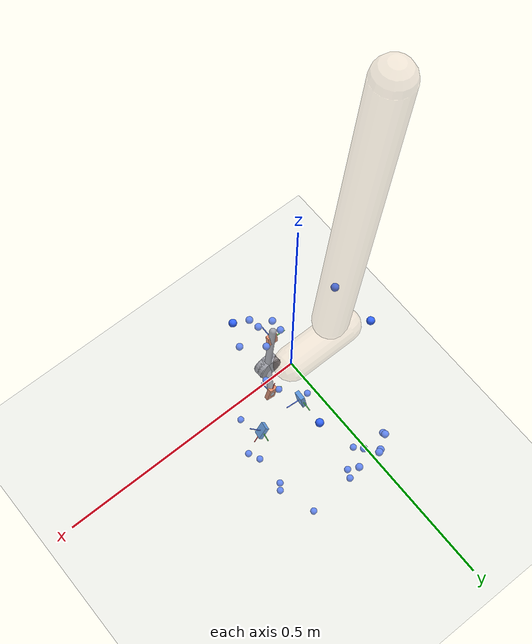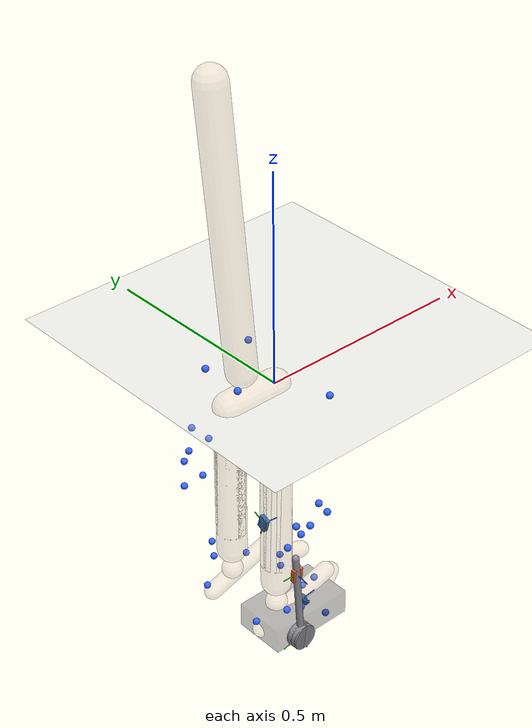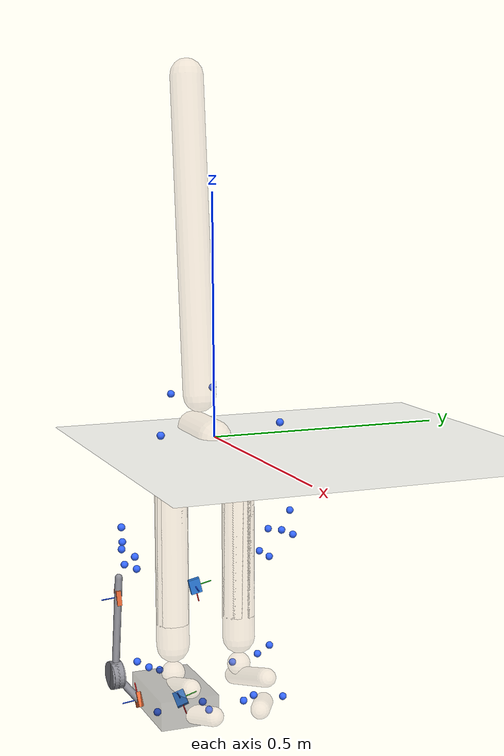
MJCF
<mujoco model="AB18">
  <compiler angle="radian" autolimits="true"/>
  <option timestep="0.005" gravity="0 0 -9.81"><flag contact="disable"/></option>
  <visual><global offwidth="1600" offheight="1200"/>
    <headlight ambient="0.55 0.55 0.55" diffuse="0.6 0.6 0.6"/></visual>
  <default><joint limited="false" damping="0"/><geom contype="0" conaffinity="0"/></default>
  <asset>
    <texture name="grid" type="2d" builtin="checker" rgb1="0.75 0.77 0.8" rgb2="0.85 0.87 0.9" width="512" height="512"/>
    <material name="grid" texture="grid" texrepeat="2 2" texuniform="true"/>
    <material name="skin" rgba="0.85 0.72 0.62 0.28"/>
  </asset>
  <worldbody>
    <light pos="0 0 4" dir="0 0 -1"/>
    <geom name="floor" type="plane" size="0 0 0.05" material="grid"/>
    <body name="pelvis" pos="0 0 0" quat="1 0 0 0">
      <joint name="pelvis_tx" type="slide" axis="1 0 0"/>
      <joint name="pelvis_ty" type="slide" axis="0 0 1"/>
      <joint name="pelvis_tz" type="slide" axis="0 -1 0"/>
      <joint name="pelvis_tilt" type="hinge" axis="0 -1 0"/>
      <joint name="pelvis_list" type="hinge" axis="1 0 0"/>
      <joint name="pelvis_rotation" type="hinge" axis="0 0 1"/>
      <inertial pos="-0.063242296 0 0" mass="9.39691" diaginertia="0.093969058 0.093969058 0.093969058"/>
      <geom type="capsule" fromto="0 0 0 -0.12648459 0 0" size="0.035" material="skin" mass="0"/>
      <site name="m_R_ASIS" pos="0.038340863 -0.12784244 0.018574755" size="0.008" rgba="0.2 0.4 1 1" group="2"/>
      <site name="m_L_ASIS" pos="0.040589419 0.12925634 0.028045488" size="0.008" rgba="0.2 0.4 1 1" group="2"/>
      <site name="m_L_PSIS" pos="-0.14479974 0.048839696 0.079273576" size="0.008" rgba="0.2 0.4 1 1" group="2"/>
      <site name="m_R_PSIS" pos="-0.14063287 -0.046551042 0.071405024" size="0.008" rgba="0.2 0.4 1 1" group="2"/>
      <body name="femur_r" pos="-0.063242296 -0.074692103 -0.059127521" quat="1 0 0 0">
        <joint name="hip_flexion_r" type="hinge" axis="0 -1 0"/>
        <joint name="hip_adduction_r" type="hinge" axis="1 0 0"/>
        <joint name="hip_rotation_r" type="hinge" axis="0 0 1"/>
        <inertial pos="0 0 -0.1742859" mass="7.42162" diaginertia="0.074216167 0.074216167 0.074216167"/>
        <geom type="capsule" fromto="0 0 0 0 0 -0.3485718" size="0.035" material="skin" mass="0"/>
        <site name="m_R_Thigh_Upper" pos="0.017455872 -0.11357388 -0.12490734" size="0.008" rgba="0.2 0.4 1 1" group="2"/>
        <site name="m_R_Thigh_Front" pos="0.057300129 -0.097913778 -0.1789683" size="0.008" rgba="0.2 0.4 1 1" group="2"/>
        <site name="m_R_Thigh_Rear" pos="-0.0016213972 -0.10853877 -0.1768782" size="0.008" rgba="0.2 0.4 1 1" group="2"/>
        <site name="m_R_Knee_Lat" pos="0.00076262967 -0.079702434 -0.4232839" size="0.008" rgba="0.2 0.4 1 1" group="2"/>
        <body name="tibia_r" pos="0 0 0" quat="1 0 0 0">
<geom name="gt_shank_axis_x" type="capsule" size="0.0012" fromto="0.00720 0.04850 -0.27090 0.00595 0.05706 -0.30481" rgba="1 0.1 0.1 1" contype="0" conaffinity="0" mass="0"/>
<geom name="gt_shank_axis_y" type="capsule" size="0.0012" fromto="0.00720 0.04850 -0.27090 0.01102 0.08227 -0.26252" rgba="0.1 0.8 0.1 1" contype="0" conaffinity="0" mass="0"/>
<geom name="gt_shank_axis_z" type="capsule" size="0.0012" fromto="0.00720 0.04850 -0.27090 0.04197 0.04510 -0.27304" rgba="0.1 0.3 1 1" contype="0" conaffinity="0" mass="0"/>
<geom name="exo_shank_axis_x" type="capsule" size="0.0012" fromto="-0.03828 -0.10766 -0.29010 -0.03871 -0.11082 -0.25524" rgba="1 0.1 0.1 1" contype="0" conaffinity="0" mass="0"/>
<geom name="exo_shank_axis_y" type="capsule" size="0.0012" fromto="-0.03828 -0.10766 -0.29010 -0.07322 -0.10561 -0.29034" rgba="0.1 0.8 0.1 1" contype="0" conaffinity="0" mass="0"/>
<geom name="exo_shank_axis_z" type="capsule" size="0.0012" fromto="-0.03828 -0.10766 -0.29010 -0.04029 -0.14245 -0.29328" rgba="0.1 0.3 1 1" contype="0" conaffinity="0" mass="0"/>
<geom name="encoder_shank" type="cylinder" size="0.03 0.012" fromto="-0.03459 -0.12969 -0.45847 -0.03381 -0.10571 -0.45833" rgba="0.55 0.55 0.58 1" contype="0" conaffinity="0" mass="0"/>
<geom name="strut_shank" type="capsule" size="0.008" fromto="-0.03420 -0.11770 -0.45840 -0.03930 -0.10515 -0.24802" rgba="0.55 0.55 0.58 1" contype="0" conaffinity="0" mass="0"/>
          <joint name="knee_r_translation1" type="slide" axis="1 0 0"/>
          <joint name="knee_r_translation2" type="slide" axis="0 0 1"/>
          <joint name="knee_angle_r" type="hinge" axis="0 -1 0"/>
          <inertial pos="0 0 -0.19904865" mass="2.95823" diaginertia="0.029582261 0.029582261 0.029582261"/>
          <geom type="capsule" fromto="0 0 0 0 0 -0.39809729" size="0.035" material="skin" mass="0"/>
          <site name="m_R_Shank_Upper" pos="-0.031610506 -0.098000651 -0.16951193" size="0.008" rgba="0.2 0.4 1 1" group="2"/>
          <site name="m_R_Shank_Front" pos="0.0011793471 -0.077597487 -0.22155953" size="0.008" rgba="0.2 0.4 1 1" group="2"/>
          <site name="m_R_Shank_Rear" pos="-0.047639596 -0.089500063 -0.22367706" size="0.008" rgba="0.2 0.4 1 1" group="2"/>
          <site name="m_R_Ankle_Lat" pos="-0.013631711 -0.049686261 -0.4446729" size="0.008" rgba="0.2 0.4 1 1" group="2"/>
          <site name="gt_shank_imu" type="box" size="0.016 0.012 0.005" pos="0.0072 0.0485 -0.2709" quat="0.68340492 0.12313501 0.71787373 0.04952567" rgba="0.16 0.47 0.84 1" group="1"/>
          <site name="exo_shank_imu" type="box" size="0.016 0.012 0.005" pos="-0.038281 -0.107656 -0.290096" quat="-0.4886153 -0.50504715 0.53894347 -0.46445925" rgba="0.92 0.41 0.20 1" group="1"/>
          <body name="talus_r" pos="0 0 -0.45844091" quat="1 0 0 0">
            <joint name="ankle_angle_r" type="hinge" axis="-0.10501355 -0.97912632 -0.17402245"/>
            <inertial pos="0 0 0" mass="0.0797903" diaginertia="0.00079790319 0.00079790319 0.00079790319"/>
            <geom type="sphere" size="0.025" material="skin" mass="0"/>
            <body name="calcn_r" pos="-0.051995728 -0.0084438418 -0.044724642" quat="1 0 0 0">
<geom name="gt_foot_axis_x" type="capsule" size="0.0012" fromto="0.12250 0.00060 0.01230 0.14777 0.00459 -0.01159" rgba="1 0.1 0.1 1" contype="0" conaffinity="0" mass="0"/>
<geom name="gt_foot_axis_y" type="capsule" size="0.0012" fromto="0.12250 0.00060 0.01230 0.12980 0.03226 0.02531" rgba="0.1 0.8 0.1 1" contype="0" conaffinity="0" mass="0"/>
<geom name="gt_foot_axis_z" type="capsule" size="0.0012" fromto="0.12250 0.00060 0.01230 0.14559 -0.01378 0.03432" rgba="0.1 0.3 1 1" contype="0" conaffinity="0" mass="0"/>
<geom name="exo_foot_axis_x" type="capsule" size="0.0012" fromto="0.04119 -0.06627 -0.00877 0.02780 -0.06964 0.02339" rgba="1 0.1 0.1 1" contype="0" conaffinity="0" mass="0"/>
<geom name="exo_foot_axis_y" type="capsule" size="0.0012" fromto="0.04119 -0.06627 -0.00877 0.00889 -0.06671 -0.02226" rgba="0.1 0.8 0.1 1" contype="0" conaffinity="0" mass="0"/>
<geom name="exo_foot_axis_z" type="capsule" size="0.0012" fromto="0.04119 -0.06627 -0.00877 0.04289 -0.10110 -0.01171" rgba="0.1 0.3 1 1" contype="0" conaffinity="0" mass="0"/>
<geom name="encoder_foot" type="cylinder" size="0.03 0.012" fromto="0.01899 -0.12124 0.04440 0.01661 -0.09736 0.04500" rgba="0.55 0.55 0.58 1" contype="0" conaffinity="0" mass="0"/>
<geom name="strut_foot" type="capsule" size="0.008" fromto="0.01780 -0.10930 0.04470 0.04119 -0.06627 -0.00877" rgba="0.55 0.55 0.58 1" contype="0" conaffinity="0" mass="0"/>
<geom name="shoe" type="box" pos="0.09297 -0.00222 0.00620" size="0.10109 0.06194 0.03000" rgba="0.15 0.15 0.18 0.35" contype="0" conaffinity="0" mass="0"/>
              <joint name="subtalar_angle_r" type="hinge" axis="0.78717961 0.12094949 0.60474746"/>
              <inertial pos="0.096256205 0 0.028876862" mass="0.997379" diaginertia="0.0099737898 0.0099737898 0.0099737898"/>
              <geom type="capsule" fromto="0 0 0 0.19251241 0 0.057753723" size="0.02" material="skin" mass="0"/>
              <site name="m_R_Heel" pos="-0.015121386 -0.00032850646 0.029411324" size="0.008" rgba="0.2 0.4 1 1" group="2"/>
              <site name="m_R_Toe_Lat" pos="0.14127217 -0.056049758 -0.0023273129" size="0.008" rgba="0.2 0.4 1 1" group="2"/>
              <site name="m_R_Toe_Med" pos="0.16668126 0.047835188 -0.0037984096" size="0.008" rgba="0.2 0.4 1 1" group="2"/>
              <site name="m_R_Toe_Tip" pos="0.18405935 0.02796664 0.022792341" size="0.008" rgba="0.2 0.4 1 1" group="2"/>
              <site name="gt_foot_imu" type="box" size="0.016 0.012 0.005" pos="0.1225 0.0006 0.0123" quat="0.90216307 0.21689328 0.3719813 -0.026249038" rgba="0.16 0.47 0.84 1" group="1"/>
              <site name="exo_foot_imu" type="box" size="0.016 0.012 0.005" pos="0.041186 -0.06627 -0.008771" quat="-0.36086193 -0.42249648 0.60284566 -0.57258406" rgba="0.92 0.41 0.20 1" group="1"/>
              <body name="toes_r" pos="0.1721061 -0.001039567 -0.0019251241" quat="1 0 0 0">
                <joint name="mtp_angle_r" type="hinge" axis="-0.5809544 -0.81393611 0"/>
                <inertial pos="0.033304647 0.016844836 0.0057753723" mass="0.172826" diaginertia="0.0017282583 0.0017282583 0.0017282583"/>
                <geom type="capsule" fromto="0 0 0 0.066609294 0.033689672 0.011550745" size="0.02" material="skin" mass="0"/>
              </body>
            </body>
          </body>
        </body>
      </body>
      <body name="femur_l" pos="-0.063242296 0.074692103 -0.059127521" quat="1 0 0 0">
        <joint name="hip_flexion_l" type="hinge" axis="0 -1 0"/>
        <joint name="hip_adduction_l" type="hinge" axis="-1 0 0"/>
        <joint name="hip_rotation_l" type="hinge" axis="0 0 -1"/>
        <inertial pos="0 0 -0.1742859" mass="7.42162" diaginertia="0.074216167 0.074216167 0.074216167"/>
        <geom type="capsule" fromto="0 0 0 0 0 -0.3485718" size="0.035" material="skin" mass="0"/>
        <site name="m_L_Thigh_Upper" pos="-0.0053726371 0.1229241 -0.13003535" size="0.008" rgba="0.2 0.4 1 1" group="2"/>
        <site name="m_L_Thigh_Front" pos="0.034218828 0.11320389 -0.17366738" size="0.008" rgba="0.2 0.4 1 1" group="2"/>
        <site name="m_L_Thigh_Rear" pos="-0.024698934 0.1114287 -0.17773882" size="0.008" rgba="0.2 0.4 1 1" group="2"/>
        <site name="m_L_Knee_Lat" pos="0.00097664924 0.071736656 -0.42670212" size="0.008" rgba="0.2 0.4 1 1" group="2"/>
        <body name="tibia_l" pos="0 0 0" quat="1 0 0 0">
          <joint name="knee_l_translation1" type="slide" axis="1 0 0"/>
          <joint name="knee_l_translation2" type="slide" axis="0 0 1"/>
          <joint name="knee_angle_l" type="hinge" axis="0 -1 0"/>
          <inertial pos="0 0 -0.19904865" mass="2.95823" diaginertia="0.029582261 0.029582261 0.029582261"/>
          <geom type="capsule" fromto="0 0 0 0 0 -0.39809729" size="0.035" material="skin" mass="0"/>
          <site name="m_L_Shank_Upper" pos="-0.054344021 0.091687975 -0.17998403" size="0.008" rgba="0.2 0.4 1 1" group="2"/>
          <site name="m_L_Shank_Front" pos="-0.014540529 0.077810993 -0.23112919" size="0.008" rgba="0.2 0.4 1 1" group="2"/>
          <site name="m_L_Shank_Rear" pos="-0.068640459 0.076451211 -0.23209915" size="0.008" rgba="0.2 0.4 1 1" group="2"/>
          <site name="m_L_Ankle_Lat" pos="-0.01314004 0.048997057 -0.44759167" size="0.008" rgba="0.2 0.4 1 1" group="2"/>
          <body name="talus_l" pos="0 0 -0.45844091" quat="1 0 0 0">
            <joint name="ankle_angle_l" type="hinge" axis="0.10501355 -0.97912632 0.17402245"/>
            <inertial pos="0 0 0" mass="0.0797903" diaginertia="0.00079790319 0.00079790319 0.00079790319"/>
            <geom type="sphere" size="0.025" material="skin" mass="0"/>
            <body name="calcn_l" pos="-0.051995728 0.0084438418 -0.044724642" quat="1 0 0 0">
              <joint name="subtalar_angle_l" type="hinge" axis="-0.78717961 0.12094949 -0.60474746"/>
              <inertial pos="0.096256205 0 0.028876862" mass="0.997379" diaginertia="0.0099737898 0.0099737898 0.0099737898"/>
              <geom type="capsule" fromto="0 0 0 0.19251241 0 0.057753723" size="0.02" material="skin" mass="0"/>
              <site name="m_L_Heel" pos="-0.013920675 0.0017904602 0.024537086" size="0.008" rgba="0.2 0.4 1 1" group="2"/>
              <site name="m_L_Toe_Lat" pos="0.14793309 0.055495436 -0.0063519271" size="0.008" rgba="0.2 0.4 1 1" group="2"/>
              <site name="m_L_Toe_Med" pos="0.16827988 -0.042106411 0.0053571266" size="0.008" rgba="0.2 0.4 1 1" group="2"/>
              <site name="m_L_Toe_Tip" pos="0.18182316 -0.024744069 0.019536746" size="0.008" rgba="0.2 0.4 1 1" group="2"/>
              <body name="toes_l" pos="0.1721061 0.001039567 -0.0019251241" quat="1 0 0 0">
                <joint name="mtp_angle_l" type="hinge" axis="0.5809544 -0.81393611 0"/>
                <inertial pos="0.033304647 -0.016844836 0.0057753723" mass="0.172826" diaginertia="0.0017282583 0.0017282583 0.0017282583"/>
                <geom type="capsule" fromto="0 0 0 0.066609294 -0.033689672 0.011550745" size="0.02" material="skin" mass="0"/>
              </body>
            </body>
          </body>
        </body>
      </body>
      <body name="torso" pos="-0.090077782 0 0.072903071" quat="1 0 0 0">
        <joint name="lumbar_extension" type="hinge" axis="0 -1 0"/>
        <joint name="lumbar_bending" type="hinge" axis="1 0 0"/>
        <joint name="lumbar_rotation" type="hinge" axis="0 0 1"/>
        <inertial pos="-0.031160604 0 0.33237977" mass="27.3175" diaginertia="0.27317492 0.27317492 0.27317492"/>
        <geom type="capsule" fromto="0 0 0 -0.062321208 0 0.66475955" size="0.035" material="skin" mass="0"/>
      </body>
    </body>
  </worldbody>
  <sensor>
<accelerometer name="gt_foot_imu_acc" site="gt_foot_imu"/>
<gyro name="gt_foot_imu_gyr" site="gt_foot_imu"/>
<accelerometer name="exo_foot_imu_acc" site="exo_foot_imu"/>
<gyro name="exo_foot_imu_gyr" site="exo_foot_imu"/>
<accelerometer name="gt_shank_imu_acc" site="gt_shank_imu"/>
<gyro name="gt_shank_imu_gyr" site="gt_shank_imu"/>
<accelerometer name="exo_shank_imu_acc" site="exo_shank_imu"/>
<gyro name="exo_shank_imu_gyr" site="exo_shank_imu"/>
</sensor>
</mujoco>
